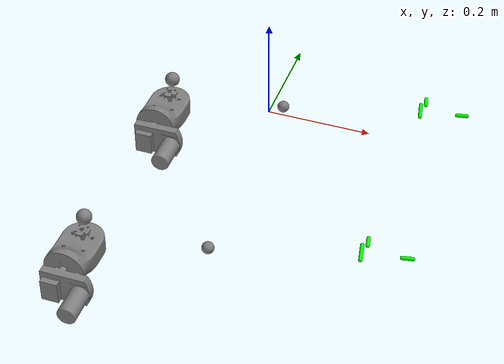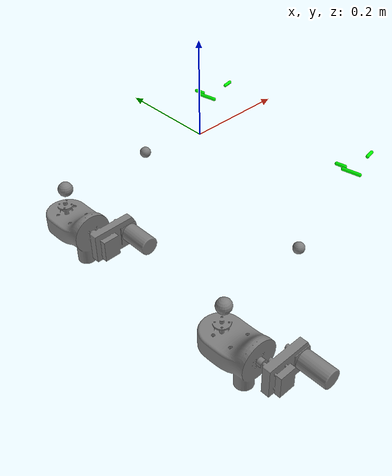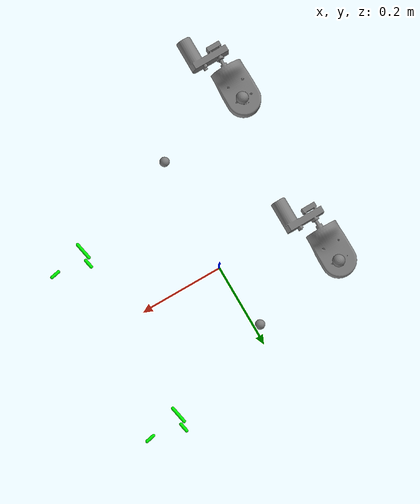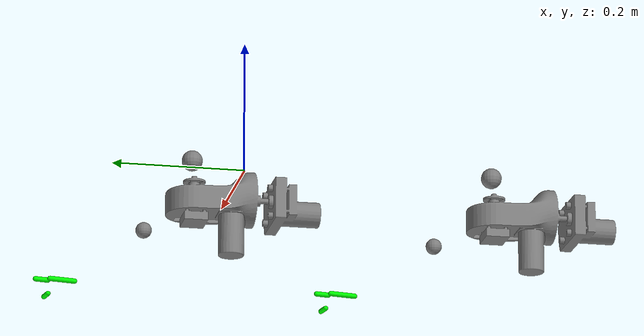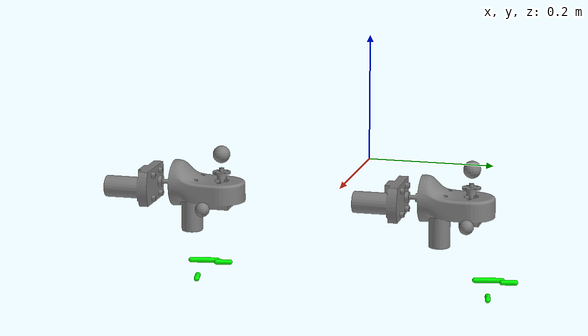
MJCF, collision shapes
<mujoco model="two_arms">
  <compiler meshdir="meshes" angle="degree"/>
  <option timestep="0.002" gravity="0 0 -9.81"/>

  <asset>
    <mesh name="Shoulder" file="Shoulder.STL" scale="0.001 0.001 0.001"/>
    <mesh name="Bicep"    file="Bicep.STL"    scale="0.001 0.001 0.001"/>
    <mesh name="Elbow"    file="Elbow.STL"    scale="0.001 0.001 0.001"/>
    <mesh name="Forearm"  file="Forearm.STL"  scale="0.001 0.001 0.001" refpos="0 0 0.0"/>
    <mesh name="Palm"     file="Palm.STL"     scale="0.001 0.001 0.001"/>
    <mesh name="Palm2"    file="Palm2.STL"    scale="0.001 0.001 0.001"/>
    <mesh name="Pointer1" file="Pointer1.STL" scale="0.001 0.001 0.001"/>
    <mesh name="Pointer2" file="Pointer2.STL" scale="0.001 0.001 0.001"/>
    <mesh name="Pointer3" file="Pointer3.STL" scale="0.001 0.001 0.001"/>
    <mesh name="Thumb1"   file="Thumb1.STL"   scale="0.001 0.001 0.001"/>
    <mesh name="Thumb2"   file="Thumb2.STL"   scale="0.001 0.001 0.001"/>
  </asset>

  <worldbody>
    <!-- LEFT ARM -->
    <body name="L_base" pos="0 0.22 0">
      <geom type="mesh" mesh="Shoulder" density="1000"/>

      <body name="L_link1" pos="-0.25 -0.1 -0.07">
        <joint name="L_joint1" type="hinge" pos="0 0 0" axis="0 0 1" range="-35 40" damping="1"/>
        <geom name="L_joint1_marker" type="sphere" pos="0 0 0" size="0.015" contype="0" conaffinity="0"/>
        <geom name="L_link1_vis" type="mesh" mesh="Bicep"
              contype="0" conaffinity="0"
              pos="0.24 0.145 0.07"
              euler="0 0 10.305"/>

        <body name="L_link2" pos="0.23 0.0344 -0.038" gravcomp="1">
          <joint name="L_joint2" type="hinge" pos="0 0 0" axis="0 1 0" range="-90 20" damping="1"/>
          <geom name="L_joint2_marker" type="sphere" pos="0 0 0" size="0.015" rgba="0 0 0 0" contype="0" conaffinity="0"/>
          <geom name="L_link2_vis" type="mesh" mesh="Elbow"
                contype="0" conaffinity="0"
                pos="0.03 0.11 0.11"
                euler="0 0 0"/>

          <body name="L_link3" pos="0 0 0" euler="0 0 11" gravcomp="1">
            <joint name="L_joint3" type="hinge" pos="0 0 0" axis="1 0 0" range="-90 180" damping="1" armature="0.01"/>
            <geom name="L_joint3_marker" type="sphere" pos="0 0 0" size="0.012" contype="0" conaffinity="0"/>
            <geom type="mesh" mesh="Forearm" contype="0" conaffinity="0"
                  pos="0.03 0.1 0.11"
                  euler="0 0 0"/>

            <body name="L_link4" pos="0.28 0 0" gravcomp="1">
              <geom name="L_joint4_marker" type="sphere" pos="0 0 0" size="0.015" rgba="0 0 0 0" contype="0" conaffinity="0"/>
              <geom name="L_link4_vis" type="mesh" mesh="Palm"
                    contype="0" conaffinity="0"
                    pos="-0.242 0.214 0.049"
                    euler="0 0 0"/>

              <body name="L_link5" pos="0 0.007 -0.005" gravcomp="1">
                <joint name="L_joint5" type="hinge" pos="0 0 0" axis="1 0 0" range="-35 40" damping="1"/>
                <geom name="L_joint5_marker" type="capsule" pos="0 0.025 0" size="0.004 0.02" euler="90 0 0" rgba="0 1 0 1" contype="0" conaffinity="0"/>
                <geom type="mesh" mesh="Palm2" contype="0" conaffinity="0" pos="-0.242 0.207 0.055" euler="0 0 0"/>

                <body name="L_flink9" pos="0 0.035 0" gravcomp="1" euler="90 0 0">
                  <joint name="L_fjoint9" type="hinge" pos="0 0 0" axis="0 1 0" range="0 40" limited="true" damping="1"/>
                  <geom name="L_fjoint9_marker" type="capsule" pos="0.01 0.0 -0.02" size="0.004 0.01" euler="0 0 0" rgba="0 1 0 1" contype="0" conaffinity="0"/>
                  <geom type="mesh" mesh="Thumb1" contype="0" conaffinity="0" pos="-0.255 0.12 -0.059" euler="-90 0 0"/>

                  <body name="L_flink10" pos="0.027 0 0" gravcomp="1">
                    <joint name="L_fjoint10" type="hinge" pos="0 0 0" axis="0 1 0" range="0 20" limited="true" damping="1"/>
                    <geom name="L_fjoint10_marker" type="capsule" pos="0.01 0 0" size="0.004 0.01" euler="0 0 0" rgba="0 0 0 0" contype="0" conaffinity="0"/>
                    <geom type="mesh" mesh="Thumb2" contype="0" conaffinity="0" pos="-0.283 0.12 -0.058" euler="-90 0 0"/>
                  </body>
                </body>
              </body>

              <body name="L_link6" pos="0.075 0.03 -0.007" gravcomp="1" euler="0 0 0">
                <joint name="L_joint6" type="hinge" pos="0 0 0" axis="0 1 0" range="0 20" limited="true" damping="1"/>
                <geom name="L_joint6_marker" type="capsule" pos="0.01 0 0" size="0.004 0.01" euler="90 90 0" rgba="0 1 0 1" contype="0" conaffinity="0"/>
                <geom type="mesh" mesh="Pointer1" contype="0" conaffinity="0" pos="-0.319 0.182 0.055" euler="0 0 0"/>

                <body name="L_link7" pos="0.027 0 0" gravcomp="1">
                  <joint name="L_joint7" type="hinge" pos="0 0 0" axis="0 1 0" range="0 20" limited="true" damping="1"/>
                  <geom name="L_joint7_marker" type="capsule" pos="0.01 0 0" size="0.004 0.01" euler="90 90 0" rgba="0 0 0 0" contype="0" conaffinity="0"/>
                  <geom type="mesh" mesh="Pointer2" contype="0" conaffinity="0" pos="-0.347 0.1815 0.055" euler="0 0 0"/>

                  <body name="L_link8" pos="0.027 0 0" gravcomp="1">
                    <joint name="L_joint8" type="hinge" pos="0 0 0" axis="0 1 0" range="0 20" limited="true" damping="1"/>
                    <geom name="L_joint8_marker" type="capsule" pos="0.01 0 0" size="0.004 0.01" euler="90 90 0" rgba="0 0 0 0" contype="0" conaffinity="0"/>
                    <geom type="mesh" mesh="Pointer3" contype="0" conaffinity="0" pos="-0.383 0.0685 0.117" euler="0 0 0"/>
                  </body>
                </body>
              </body>

              <body name="L_link9" pos="0.075 0.009 -0.006" gravcomp="1" euler="0 0 -10">
                <joint name="L_joint9" type="hinge" pos="0 0 0" axis="0 1 0" range="0 20" limited="true" damping="1"/>
                <geom name="L_joint9_marker" type="capsule" pos="0.01 0 0" size="0.004 0.01" euler="90 90 0" rgba="0 0 0 0" contype="0" conaffinity="0"/>
                <geom type="mesh" mesh="Pointer1" contype="0" conaffinity="0" pos="-0.319 0.182 0.055" euler="0 0 0"/>

                <body name="L_link10" pos="0.027 0 0" gravcomp="1">
                  <joint name="L_joint10" type="hinge" pos="0 0 0" axis="0 1 0" range="0 20" limited="true" damping="1"/>
                  <geom name="L_joint10_marker" type="capsule" pos="0.01 0 0" size="0.004 0.01" euler="90 90 0" rgba="0 0 0 0" contype="0" conaffinity="0"/>
                  <geom type="mesh" mesh="Pointer2" contype="0" conaffinity="0" pos="-0.347 0.1815 0.055" euler="0 0 0"/>

                  <body name="L_link11" pos="0.027 0 0" gravcomp="1">
                    <joint name="L_joint11" type="hinge" pos="0 0 0" axis="0 1 0" range="0 20" limited="true" damping="1"/>
                    <geom name="L_joint11_marker" type="capsule" pos="0.01 0 0" size="0.004 0.01" euler="90 90 0" rgba="0 0 0 0" contype="0" conaffinity="0"/>
                    <geom type="mesh" mesh="Pointer3" contype="0" conaffinity="0" pos="-0.383 0.0685 0.117" euler="0 0 0"/>
                  </body>
                </body>
              </body>

              <body name="L_link12" pos="0.074 -0.012 -0.005" gravcomp="1" euler="0 0 -15">
                <joint name="L_joint12" type="hinge" pos="0 0 0" axis="0 1 0" range="0 20" limited="true" damping="1"/>
                <geom name="L_joint12_marker" type="capsule" pos="0.01 0 0" size="0.004 0.01" euler="90 90 0" rgba="0 0 0 0" contype="0" conaffinity="0"/>
                <geom type="mesh" mesh="Pointer1" contype="0" conaffinity="0" pos="-0.319 0.182 0.055" euler="0 0 0"/>

                <body name="L_link13" pos="0.027 0 0" gravcomp="1">
                  <joint name="L_joint13" type="hinge" pos="0 0 0" axis="0 1 0" range="0 20" limited="true" damping="1"/>
                  <geom name="L_joint13_marker" type="capsule" pos="0.01 0 0" size="0.004 0.01" euler="90 90 0" rgba="0 0 0 0" contype="0" conaffinity="0"/>
                  <geom type="mesh" mesh="Pointer2" contype="0" conaffinity="0" pos="-0.347 0.1815 0.055" euler="0 0 0"/>

                  <body name="L_link14" pos="0.027 0 0" gravcomp="1">
                    <joint name="L_joint14" type="hinge" pos="0 0 0" axis="0 1 0" range="0 20" limited="true" damping="1"/>
                    <geom name="L_joint14_marker" type="capsule" pos="0.01 0 0" size="0.004 0.01" euler="90 90 0" rgba="0 0 0 0" contype="0" conaffinity="0"/>
                    <geom type="mesh" mesh="Pointer3" contype="0" conaffinity="0" pos="-0.383 0.0685 0.117" euler="0 0 0"/>
                  </body>
                </body>
              </body>

              <body name="L_link15" pos="0.067 -0.033 -0.005" gravcomp="1" euler="0 0 -25">
                <joint name="L_joint15" type="hinge" pos="0 0 0" axis="0 1 0" range="0 20" limited="true" damping="1"/>
                <geom name="L_joint15_marker" type="capsule" pos="0.01 0 0" size="0.004 0.01" euler="90 90 0" rgba="0 0 0 0" contype="0" conaffinity="0"/>
                <geom type="mesh" mesh="Pointer1" contype="0" conaffinity="0" pos="-0.319 0.182 0.055" euler="0 0 0"/>

                <body name="L_link16" pos="0.027 0 0" gravcomp="1">
                  <joint name="L_joint16" type="hinge" pos="0 0 0" axis="0 1 0" range="0 20" limited="true" damping="1"/>
                  <geom name="L_joint16_marker" type="capsule" pos="0.01 0 0" size="0.004 0.01" euler="90 90 0" rgba="0 0 0 0" contype="0" conaffinity="0"/>
                  <geom type="mesh" mesh="Pointer2" contype="0" conaffinity="0" pos="-0.347 0.1815 0.055" euler="0 0 0"/>

                  <body name="L_link17" pos="0.027 0 0" gravcomp="1">
                    <joint name="L_joint17" type="hinge" pos="0 0 0" axis="0 1 0" range="0 20" limited="true" damping="1"/>
                    <geom name="L_joint17_marker" type="capsule" pos="0.01 0 0" size="0.004 0.01" euler="90 90 0" rgba="0 0 0 0" contype="0" conaffinity="0"/>
                    <geom type="mesh" mesh="Pointer3" contype="0" conaffinity="0" pos="-0.383 0.0685 0.117" euler="0 0 0"/>
                  </body>
                </body>
              </body>

            </body>
          </body>
        </body>
      </body>
    </body>

    <!-- RIGHT ARM -->
    <body name="R_base" pos="0 -0.22 0">
      <geom type="mesh" mesh="Shoulder" density="1000"/>

      <body name="R_link1" pos="-0.25 -0.1 -0.07">
        <joint name="R_joint1" type="hinge" pos="0 0 0" axis="0 0 1" range="-35 40" damping="1"/>
        <geom name="R_joint1_marker" type="sphere" pos="0 0 0" size="0.015" contype="0" conaffinity="0"/>
        <geom name="R_link1_vis" type="mesh" mesh="Bicep"
              contype="0" conaffinity="0"
              pos="0.24 0.145 0.07"
              euler="0 0 10.305"/>

        <body name="R_link2" pos="0.23 0.0344 -0.038" gravcomp="1">
          <joint name="R_joint2" type="hinge" pos="0 0 0" axis="0 1 0" range="-90 40" damping="1"/>
          <geom name="R_joint2_marker" type="sphere" pos="0 0 0" size="0.015" rgba="0 0 0 0" contype="0" conaffinity="0"/>
          <geom name="R_link2_vis" type="mesh" mesh="Elbow"
                contype="0" conaffinity="0"
                pos="0.03 0.11 0.11"
                euler="0 0 0"/>

          <body name="R_link3" pos="0 0 0" euler="0 0 11" gravcomp="1">
            <joint name="R_joint3" type="hinge" pos="0 0 0" axis="1 0 0" range="-90 180" damping="1" armature="0.01"/>
            <geom name="R_joint3_marker" type="sphere" pos="0 0 0" size="0.012" contype="0" conaffinity="0"/>
            <geom type="mesh" mesh="Forearm" contype="0" conaffinity="0"
                  pos="0.03 0.1 0.11"
                  euler="0 0 0"/>

            <body name="R_link4" pos="0.28 0 0" gravcomp="1">
              <geom name="R_joint4_marker" type="sphere" pos="0 0 0" size="0.015" rgba="0 0 0 0" contype="0" conaffinity="0"/>
              <geom name="R_link4_vis" type="mesh" mesh="Palm"
                    contype="0" conaffinity="0"
                    pos="-0.242 0.214 0.049"
                    euler="0 0 0"/>

              <body name="R_link5" pos="0 0.007 -0.005" gravcomp="1">
                <joint name="R_joint5" type="hinge" pos="0 0 0" axis="1 0 0" range="-35 40" damping="1"/>
                <geom name="R_joint5_marker" type="capsule" pos="0 0.025 0" size="0.004 0.02" euler="90 0 0" rgba="0 1 0 1" contype="0" conaffinity="0"/>
                <geom type="mesh" mesh="Palm2" contype="0" conaffinity="0" pos="-0.242 0.207 0.055" euler="0 0 0"/>

                <body name="R_flink9" pos="0 0.035 0" gravcomp="1" euler="90 0 0">
                  <joint name="R_fjoint9" type="hinge" pos="0 0 0" axis="0 1 0" range="0 40" limited="true" damping="1"/>
                  <geom name="R_fjoint9_marker" type="capsule" pos="0.01 0.0 -0.02" size="0.004 0.01" euler="0 0 0" rgba="0 1 0 1" contype="0" conaffinity="0"/>
                  <geom type="mesh" mesh="Thumb1" contype="0" conaffinity="0" pos="-0.255 0.12 -0.059" euler="-90 0 0"/>

                  <body name="R_flink10" pos="0.027 0 0" gravcomp="1">
                    <joint name="R_fjoint10" type="hinge" pos="0 0 0" axis="0 1 0" range="0 20" limited="true" damping="1"/>
                    <geom name="R_fjoint10_marker" type="capsule" pos="0.01 0 0" size="0.004 0.01" euler="0 0 0" rgba="0 0 0 0" contype="0" conaffinity="0"/>
                    <geom type="mesh" mesh="Thumb2" contype="0" conaffinity="0" pos="-0.283 0.12 -0.058" euler="-90 0 0"/>
                  </body>
                </body>
              </body>

              <body name="R_link6" pos="0.075 0.03 -0.007" gravcomp="1" euler="0 0 0">
                <joint name="R_joint6" type="hinge" pos="0 0 0" axis="0 1 0" range="0 20" limited="true" damping="1"/>
                <geom name="R_joint6_marker" type="capsule" pos="0.01 0 0" size="0.004 0.01" euler="90 90 0" rgba="0 1 0 1" contype="0" conaffinity="0"/>
                <geom type="mesh" mesh="Pointer1" contype="0" conaffinity="0" pos="-0.319 0.182 0.055" euler="0 0 0"/>

                <body name="R_link7" pos="0.027 0 0" gravcomp="1">
                  <joint name="R_joint7" type="hinge" pos="0 0 0" axis="0 1 0" range="0 20" limited="true" damping="1"/>
                  <geom name="R_joint7_marker" type="capsule" pos="0.01 0 0" size="0.004 0.01" euler="90 90 0" rgba="0 0 0 0" contype="0" conaffinity="0"/>
                  <geom type="mesh" mesh="Pointer2" contype="0" conaffinity="0" pos="-0.347 0.1815 0.055" euler="0 0 0"/>

                  <body name="R_link8" pos="0.027 0 0" gravcomp="1">
                    <joint name="R_joint8" type="hinge" pos="0 0 0" axis="0 1 0" range="0 20" limited="true" damping="1"/>
                    <geom name="R_joint8_marker" type="capsule" pos="0.01 0 0" size="0.004 0.01" euler="90 90 0" rgba="0 0 0 0" contype="0" conaffinity="0"/>
                    <geom type="mesh" mesh="Pointer3" contype="0" conaffinity="0" pos="-0.383 0.0685 0.117" euler="0 0 0"/>
                  </body>
                </body>
              </body>

              <body name="R_link9" pos="0.075 0.009 -0.006" gravcomp="1" euler="0 0 -10">
                <joint name="R_joint9" type="hinge" pos="0 0 0" axis="0 1 0" range="0 20" limited="true" damping="1"/>
                <geom name="R_joint9_marker" type="capsule" pos="0.01 0 0" size="0.004 0.01" euler="90 90 0" rgba="0 0 0 0" contype="0" conaffinity="0"/>
                <geom type="mesh" mesh="Pointer1" contype="0" conaffinity="0" pos="-0.319 0.182 0.055" euler="0 0 0"/>

                <body name="R_link10" pos="0.027 0 0" gravcomp="1">
                  <joint name="R_joint10" type="hinge" pos="0 0 0" axis="0 1 0" range="0 20" limited="true" damping="1"/>
                  <geom name="R_joint10_marker" type="capsule" pos="0.01 0 0" size="0.004 0.01" euler="90 90 0" rgba="0 0 0 0" contype="0" conaffinity="0"/>
                  <geom type="mesh" mesh="Pointer2" contype="0" conaffinity="0" pos="-0.347 0.1815 0.055" euler="0 0 0"/>

                  <body name="R_link11" pos="0.027 0 0" gravcomp="1">
                    <joint name="R_joint11" type="hinge" pos="0 0 0" axis="0 1 0" range="0 20" limited="true" damping="1"/>
                    <geom name="R_joint11_marker" type="capsule" pos="0.01 0 0" size="0.004 0.01" euler="90 90 0" rgba="0 0 0 0" contype="0" conaffinity="0"/>
                    <geom type="mesh" mesh="Pointer3" contype="0" conaffinity="0" pos="-0.383 0.0685 0.117" euler="0 0 0"/>
                  </body>
                </body>
              </body>

              <body name="R_link12" pos="0.074 -0.012 -0.005" gravcomp="1" euler="0 0 -15">
                <joint name="R_joint12" type="hinge" pos="0 0 0" axis="0 1 0" range="0 20" limited="true" damping="1"/>
                <geom name="R_joint12_marker" type="capsule" pos="0.01 0 0" size="0.004 0.01" euler="90 90 0" rgba="0 0 0 0" contype="0" conaffinity="0"/>
                <geom type="mesh" mesh="Pointer1" contype="0" conaffinity="0" pos="-0.319 0.182 0.055" euler="0 0 0"/>

                <body name="R_link13" pos="0.027 0 0" gravcomp="1">
                  <joint name="R_joint13" type="hinge" pos="0 0 0" axis="0 1 0" range="0 20" limited="true" damping="1"/>
                  <geom name="R_joint13_marker" type="capsule" pos="0.01 0 0" size="0.004 0.01" euler="90 90 0" rgba="0 0 0 0" contype="0" conaffinity="0"/>
                  <geom type="mesh" mesh="Pointer2" contype="0" conaffinity="0" pos="-0.347 0.1815 0.055" euler="0 0 0"/>

                  <body name="R_link14" pos="0.027 0 0" gravcomp="1">
                    <joint name="R_joint14" type="hinge" pos="0 0 0" axis="0 1 0" range="0 20" limited="true" damping="1"/>
                    <geom name="R_joint14_marker" type="capsule" pos="0.01 0 0" size="0.004 0.01" euler="90 90 0" rgba="0 0 0 0" contype="0" conaffinity="0"/>
                    <geom type="mesh" mesh="Pointer3" contype="0" conaffinity="0" pos="-0.383 0.0685 0.117" euler="0 0 0"/>
                  </body>
                </body>
              </body>

              <body name="R_link15" pos="0.067 -0.033 -0.005" gravcomp="1" euler="0 0 -25">
                <joint name="R_joint15" type="hinge" pos="0 0 0" axis="0 1 0" range="0 20" limited="true" damping="1"/>
                <geom name="R_joint15_marker" type="capsule" pos="0.01 0 0" size="0.004 0.01" euler="90 90 0" rgba="0 0 0 0" contype="0" conaffinity="0"/>
                <geom type="mesh" mesh="Pointer1" contype="0" conaffinity="0" pos="-0.319 0.182 0.055" euler="0 0 0"/>

                <body name="R_link16" pos="0.027 0 0" gravcomp="1">
                  <joint name="R_joint16" type="hinge" pos="0 0 0" axis="0 1 0" range="0 20" limited="true" damping="1"/>
                  <geom name="R_joint16_marker" type="capsule" pos="0.01 0 0" size="0.004 0.01" euler="90 90 0" rgba="0 0 0 0" contype="0" conaffinity="0"/>
                  <geom type="mesh" mesh="Pointer2" contype="0" conaffinity="0" pos="-0.347 0.1815 0.055" euler="0 0 0"/>

                  <body name="R_link17" pos="0.027 0 0" gravcomp="1">
                    <joint name="R_joint17" type="hinge" pos="0 0 0" axis="0 1 0" range="0 20" limited="true" damping="1"/>
                    <geom name="R_joint17_marker" type="capsule" pos="0.01 0 0" size="0.004 0.01" euler="90 90 0" rgba="0 0 0 0" contype="0" conaffinity="0"/>
                    <geom type="mesh" mesh="Pointer3" contype="0" conaffinity="0" pos="-0.383 0.0685 0.117" euler="0 0 0"/>
                  </body>
                </body>
              </body>

            </body>
          </body>
        </body>
      </body>
    </body>
  </worldbody>

  <tendon>
    <fixed name="L_finger1">
      <joint joint="L_joint6" coef="0.333333"/>
      <joint joint="L_joint7" coef="0.333333"/>
    </fixed>
    <fixed name="L_finger2">
      <joint joint="L_joint9" coef="0.333333"/>
      <joint joint="L_joint10" coef="0.333333"/>
    </fixed>
    <fixed name="L_finger3">
      <joint joint="L_joint12" coef="0.333333"/>
      <joint joint="L_joint13" coef="0.333333"/>
    </fixed>
    <fixed name="L_finger4">
      <joint joint="L_joint15" coef="0.333333"/>
      <joint joint="L_joint16" coef="0.333333"/>
    </fixed>
    <fixed name="L_thumb">
      <joint joint="L_fjoint9" coef="0.333333"/>
    </fixed>

    <fixed name="R_finger1">
      <joint joint="R_joint6" coef="0.333333"/>
      <joint joint="R_joint7" coef="0.333333"/>
    </fixed>
    <fixed name="R_finger2">
      <joint joint="R_joint9" coef="0.333333"/>
      <joint joint="R_joint10" coef="0.333333"/>
    </fixed>
    <fixed name="R_finger3">
      <joint joint="R_joint12" coef="0.333333"/>
      <joint joint="R_joint13" coef="0.333333"/>
    </fixed>
    <fixed name="R_finger4">
      <joint joint="R_joint15" coef="0.333333"/>
      <joint joint="R_joint16" coef="0.333333"/>
    </fixed>
    <fixed name="R_thumb">
      <joint joint="R_fjoint9" coef="0.333333"/>
    </fixed>
  </tendon>

  <equality>
    <joint name="L_j6_j7_couple" joint1="L_joint6" joint2="L_joint7" polycoef="0 1 0 0 0"/>
    <joint name="L_j7_j8_couple" joint1="L_joint7" joint2="L_joint8" polycoef="0 1 0 0 0"/>
    <joint name="L_j9_j10_couple" joint1="L_joint9" joint2="L_joint10" polycoef="0 1 0 0 0"/>
    <joint name="L_j10_j11_couple" joint1="L_joint10" joint2="L_joint11" polycoef="0 1 0 0 0"/>
    <joint name="L_j12_j13_couple" joint1="L_joint12" joint2="L_joint13" polycoef="0 1 0 0 0"/>
    <joint name="L_j13_j14_couple" joint1="L_joint13" joint2="L_joint14" polycoef="0 1 0 0 0"/>
    <joint name="L_j15_j16_couple" joint1="L_joint15" joint2="L_joint16" polycoef="0 1 0 0 0"/>
    <joint name="L_j16_j17_couple" joint1="L_joint16" joint2="L_joint17" polycoef="0 1 0 0 0"/>

    <joint name="R_j6_j7_couple" joint1="R_joint6" joint2="R_joint7" polycoef="0 1 0 0 0"/>
    <joint name="R_j7_j8_couple" joint1="R_joint7" joint2="R_joint8" polycoef="0 1 0 0 0"/>
    <joint name="R_j9_j10_couple" joint1="R_joint9" joint2="R_joint10" polycoef="0 1 0 0 0"/>
    <joint name="R_j10_j11_couple" joint1="R_joint10" joint2="R_joint11" polycoef="0 1 0 0 0"/>
    <joint name="R_j12_j13_couple" joint1="R_joint12" joint2="R_joint13" polycoef="0 1 0 0 0"/>
    <joint name="R_j13_j14_couple" joint1="R_joint13" joint2="R_joint14" polycoef="0 1 0 0 0"/>
    <joint name="R_j15_j16_couple" joint1="R_joint15" joint2="R_joint16" polycoef="0 1 0 0 0"/>
    <joint name="R_j16_j17_couple" joint1="R_joint16" joint2="R_joint17" polycoef="0 1 0 0 0"/>
  </equality>

  <actuator>
    <!-- LEFT ARM -->
    <motor name="L_Shoulder" joint="L_joint1" gear="1" ctrlrange="-10 10" ctrllimited="true" forcerange="-1.5 1.5" forcelimited="true"/>
    <motor name="L_Bicep" joint="L_joint2" gear="5"/>
    <motor name="L_Forearm" joint="L_joint3" gear="1"/>
    <motor name="L_Thumb_Joint" joint="L_joint5" gear="1" ctrlrange="-0.2 1.5" ctrllimited="true" forcerange="-1.5 1.5" forcelimited="true"/>
    <position name="L_Index" tendon="L_finger1" kp="5" ctrlrange="-1 0" ctrllimited="true" forcerange="-1.5 1.5" forcelimited="true"/>
    <position name="L_Middle" tendon="L_finger2" kp="5" ctrlrange="-1 0" ctrllimited="true" forcerange="-1.5 1.5" forcelimited="true"/>
    <position name="L_Ring" tendon="L_finger3" kp="5" ctrlrange="-1 0" ctrllimited="true" forcerange="-1.5 1.5" forcelimited="true"/>
    <position name="L_Pinky" tendon="L_finger4" kp="5" ctrlrange="-1 0" ctrllimited="true" forcerange="-1.5 1.5" forcelimited="true"/>
    <position name="L_Thumb" tendon="L_thumb" kp="5" ctrlrange="-0.3 0" ctrllimited="true" forcerange="-2.5 1.5" forcelimited="true"/>

    <!-- RIGHT ARM -->
    <motor name="R_Shoulder" joint="R_joint1" gear="1" ctrlrange="-10 10" ctrllimited="true" forcerange="-1.5 1.5" forcelimited="true"/>
    <motor name="R_Bicep" joint="R_joint2" gear="5"/>
    <motor name="R_Forearm" joint="R_joint3" gear="1"/>
    <motor name="R_Thumb_Joint" joint="R_joint5" gear="1" ctrlrange="-0.2 1.5" ctrllimited="true" forcerange="-1.5 1.5" forcelimited="true"/>
    <position name="R_Index" tendon="R_finger1" kp="5" ctrlrange="-1 0" ctrllimited="true" forcerange="-1.5 1.5" forcelimited="true"/>
    <position name="R_Middle" tendon="R_finger2" kp="5" ctrlrange="-1 0" ctrllimited="true" forcerange="-1.5 1.5" forcelimited="true"/>
    <position name="R_Ring" tendon="R_finger3" kp="5" ctrlrange="-1 0" ctrllimited="true" forcerange="-1.5 1.5" forcelimited="true"/>
    <position name="R_Pinky" tendon="R_finger4" kp="5" ctrlrange="-1 0" ctrllimited="true" forcerange="-1.5 1.5" forcelimited="true"/>
    <position name="R_Thumb" tendon="R_thumb" kp="5" ctrlrange="-0.3 0" ctrllimited="true" forcerange="-2.5 1.5" forcelimited="true"/>
  </actuator>
</mujoco>
